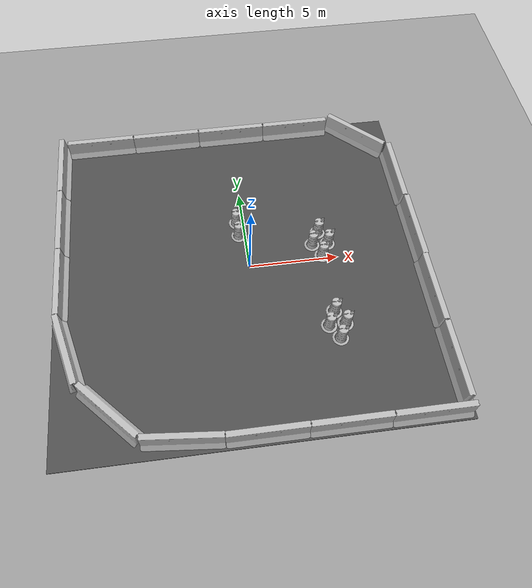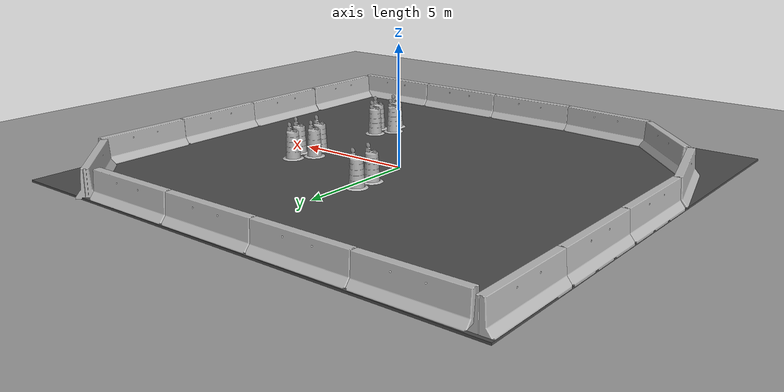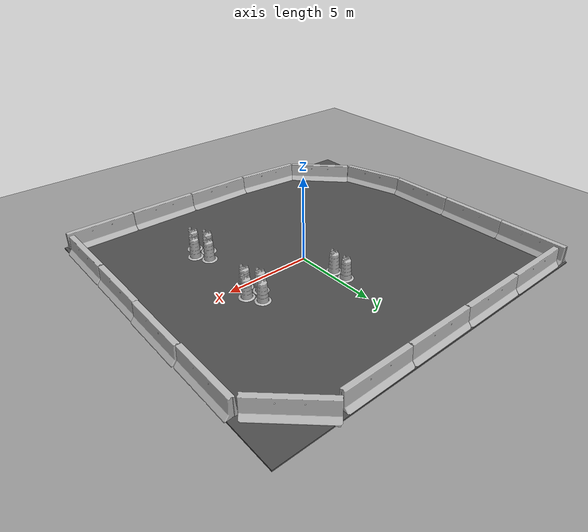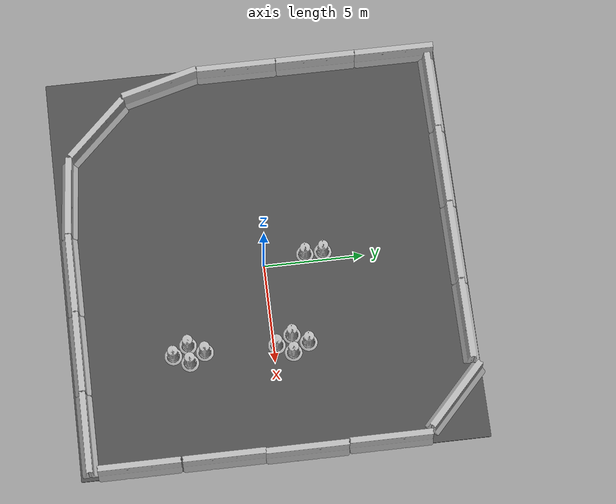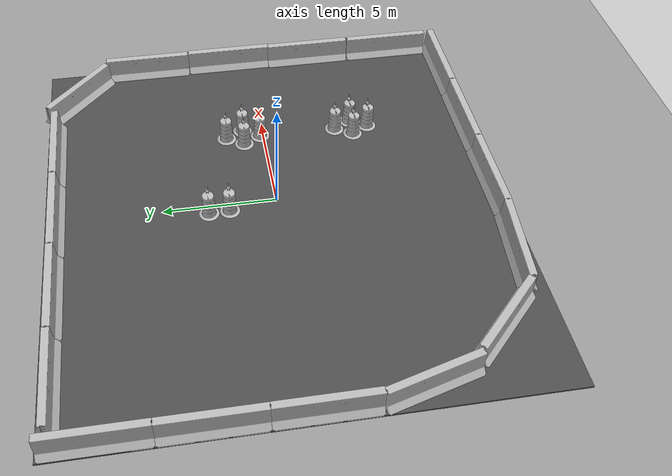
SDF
<sdf version="1.6">
 <world name="default">
  <light name="sun" type="directional">
   <pose>0 0 10 0 -0 0</pose>
   <diffuse>0.8 0.8 0.8 1</diffuse>
   <specular>0.2 0.2 0.2 1</specular>
   <attenuation>
    <range>1000</range>
    <constant>0.9</constant>
    <linear>0.01</linear>
    <quadratic>0.001</quadratic>
   </attenuation>
   <direction>0.5 0.1 -0.9</direction>
  </light>
  <scene><ambient>0.4 0.4 0.4 1</ambient><background>0.7 0.7 0.7 1</background><shadows>1</shadows></scene>
  <physics name="default_physics" default="0" type="ode">
   <max_step_size>0.01</max_step_size>
   <real_time_factor>1</real_time_factor>
   <real_time_update_rate>100</real_time_update_rate>
  </physics>
  <model name="ground_plane_0">
   <static>1</static>
   <link name="link">
    <collision name="collision">
     <geometry><plane><normal>0 0 1</normal><size>100 100</size></plane></geometry>
     <surface><friction><ode><mu>100</mu><mu2>50</mu2></ode></friction></surface>
    </collision>
    <visual name="visual">
     <cast_shadows>0</cast_shadows>
     <geometry><plane><normal>0 0 1</normal><size>100 100</size></plane></geometry>
     <material>
      <script><uri>file://media/materials/scripts/gazebo.material</uri><name>Gazebo/Grey</name></script>
     </material>
    </visual>
    <velocity_decay><linear>0</linear><angular>0</angular></velocity_decay>
   </link>
   <pose>0.497681 0 0 0 -0 0</pose>
  </model>
  <gravity>0 0 -9.8</gravity>
  <magnetic_field>6e-06 2.3e-05 -4.2e-05</magnetic_field>
  <atmosphere type="adiabatic"/>
  <spherical_coordinates>
   <surface_model>EARTH_WGS84</surface_model>
   <latitude_deg>0</latitude_deg>
   <longitude_deg>0</longitude_deg>
   <elevation>0</elevation>
   <heading_deg>0</heading_deg>
  </spherical_coordinates>
  <model name="asphalt_plane">
   <static>1</static>
   <link name="link">
    <collision name="collision"><geometry><box><size>20.8551 20 0.1</size></box></geometry></collision>
    <visual name="visual">
     <cast_shadows>0</cast_shadows>
     <geometry><box><size>20.8551 20 0.1</size></box></geometry>
     <material>
      <script>
       <uri>model://asphalt_plane/materials/scripts</uri>
       <uri>model://asphalt_plane/materials/textures</uri>
       <name>vrc/asphalt</name>
      </script>
     </material>
    </visual>
   </link>
   <pose>-0.497681 0 0 0 -0 0</pose>
  </model>
  <model name="jersey_barrier_0">
   <static>1</static>
   <link name="link">
    <visual name="visual">
     <geometry>
      <mesh><uri>model://jersey_barrier/meshes/jersey_barrier.dae</uri><scale>1 1 1</scale></mesh>
     </geometry>
    </visual>
    <collision name="upright">
     <pose>0 0 0.5715 0 -0 0</pose>
     <geometry><box><size>4.06542 0.3063 1.143</size></box></geometry>
    </collision>
    <collision name="base">
     <pose>0 0 0.032258 0 -0 0</pose>
     <geometry><box><size>4.06542 0.8107 0.064516</size></box></geometry>
    </collision>
    <collision name="base2">
     <pose>0 0 0.1 0 -0 0</pose>
     <geometry><box><size>4.06542 0.65 0.1</size></box></geometry>
    </collision>
    <collision name="base3">
     <pose>0 0 0.2 0 -0 0</pose>
     <geometry><box><size>4.06542 0.5 0.1</size></box></geometry>
    </collision>
    <collision name="left-angle">
     <pose>0 -0.224 0.2401 0.9 -0 0</pose>
     <geometry><box><size>4.06542 0.5 0.064516</size></box></geometry>
    </collision>
    <collision name="right-angle">
     <pose>0 0.224 0.2401 -0.9 0 0</pose>
     <geometry><box><size>4.06542 0.5 0.064516</size></box></geometry>
    </collision>
   </link>
   <pose>3.65574 -9.51151 0 0 -0 0</pose>
  </model>
  <model name="jersey_barrier_0_clone">
   <static>1</static>
   <link name="link">
    <visual name="visual">
     <geometry>
      <mesh><uri>model://jersey_barrier/meshes/jersey_barrier.dae</uri><scale>1 1 1</scale></mesh>
     </geometry>
    </visual>
    <collision name="upright">
     <pose>0 0 0.5715 0 -0 0</pose>
     <geometry><box><size>4.06542 0.3063 1.143</size></box></geometry>
    </collision>
    <collision name="base">
     <pose>0 0 0.032258 0 -0 0</pose>
     <geometry><box><size>4.06542 0.8107 0.064516</size></box></geometry>
    </collision>
    <collision name="base2">
     <pose>0 0 0.1 0 -0 0</pose>
     <geometry><box><size>4.06542 0.65 0.1</size></box></geometry>
    </collision>
    <collision name="base3">
     <pose>0 0 0.2 0 -0 0</pose>
     <geometry><box><size>4.06542 0.5 0.1</size></box></geometry>
    </collision>
    <collision name="left-angle">
     <pose>0 -0.224 0.2401 0.9 -0 0</pose>
     <geometry><box><size>4.06542 0.5 0.064516</size></box></geometry>
    </collision>
    <collision name="right-angle">
     <pose>0 0.224 0.2401 -0.9 0 0</pose>
     <geometry><box><size>4.06542 0.5 0.064516</size></box></geometry>
    </collision>
   </link>
   <pose>-0.409611 -9.50454 0 0 -0 0</pose>
  </model>
  <model name="jersey_barrier_0_clone_clone">
   <static>1</static>
   <link name="link">
    <visual name="visual">
     <geometry>
      <mesh><uri>model://jersey_barrier/meshes/jersey_barrier.dae</uri><scale>1 1 1</scale></mesh>
     </geometry>
    </visual>
    <collision name="upright">
     <pose>0 0 0.5715 0 -0 0</pose>
     <geometry><box><size>4.06542 0.3063 1.143</size></box></geometry>
    </collision>
    <collision name="base">
     <pose>0 0 0.032258 0 -0 0</pose>
     <geometry><box><size>4.06542 0.8107 0.064516</size></box></geometry>
    </collision>
    <collision name="base2">
     <pose>0 0 0.1 0 -0 0</pose>
     <geometry><box><size>4.06542 0.65 0.1</size></box></geometry>
    </collision>
    <collision name="base3">
     <pose>0 0 0.2 0 -0 0</pose>
     <geometry><box><size>4.06542 0.5 0.1</size></box></geometry>
    </collision>
    <collision name="left-angle">
     <pose>0 -0.224 0.2401 0.9 -0 0</pose>
     <geometry><box><size>4.06542 0.5 0.064516</size></box></geometry>
    </collision>
    <collision name="right-angle">
     <pose>0 0.224 0.2401 -0.9 0 0</pose>
     <geometry><box><size>4.06542 0.5 0.064516</size></box></geometry>
    </collision>
   </link>
   <pose>-4.46035 -9.30397 0 0 0 -0.091046</pose>
  </model>
  <model name="jersey_barrier_0_clone_clone_0">
   <static>1</static>
   <link name="link">
    <visual name="visual">
     <geometry>
      <mesh><uri>model://jersey_barrier/meshes/jersey_barrier.dae</uri><scale>1 1 1</scale></mesh>
     </geometry>
    </visual>
    <collision name="upright">
     <pose>0 0 0.5715 0 -0 0</pose>
     <geometry><box><size>4.06542 0.3063 1.143</size></box></geometry>
    </collision>
    <collision name="base">
     <pose>0 0 0.032258 0 -0 0</pose>
     <geometry><box><size>4.06542 0.8107 0.064516</size></box></geometry>
    </collision>
    <collision name="base2">
     <pose>0 0 0.1 0 -0 0</pose>
     <geometry><box><size>4.06542 0.65 0.1</size></box></geometry>
    </collision>
    <collision name="base3">
     <pose>0 0 0.2 0 -0 0</pose>
     <geometry><box><size>4.06542 0.5 0.1</size></box></geometry>
    </collision>
    <collision name="left-angle">
     <pose>0 -0.224 0.2401 0.9 -0 0</pose>
     <geometry><box><size>4.06542 0.5 0.064516</size></box></geometry>
    </collision>
    <collision name="right-angle">
     <pose>0 0.224 0.2401 -0.9 0 0</pose>
     <geometry><box><size>4.06542 0.5 0.064516</size></box></geometry>
    </collision>
   </link>
   <pose>7.73169 -9.51944 0 0 -0 0</pose>
  </model>
  <model name="jersey_barrier_0_clone_clone_0_clone">
   <static>1</static>
   <link name="link">
    <visual name="visual">
     <geometry>
      <mesh><uri>model://jersey_barrier/meshes/jersey_barrier.dae</uri><scale>1 1 1</scale></mesh>
     </geometry>
    </visual>
    <collision name="upright">
     <pose>0 0 0.5715 0 -0 0</pose>
     <geometry><box><size>4.06542 0.3063 1.143</size></box></geometry>
    </collision>
    <collision name="base">
     <pose>0 0 0.032258 0 -0 0</pose>
     <geometry><box><size>4.06542 0.8107 0.064516</size></box></geometry>
    </collision>
    <collision name="base2">
     <pose>0 0 0.1 0 -0 0</pose>
     <geometry><box><size>4.06542 0.65 0.1</size></box></geometry>
    </collision>
    <collision name="base3">
     <pose>0 0 0.2 0 -0 0</pose>
     <geometry><box><size>4.06542 0.5 0.1</size></box></geometry>
    </collision>
    <collision name="left-angle">
     <pose>0 -0.224 0.2401 0.9 -0 0</pose>
     <geometry><box><size>4.06542 0.5 0.064516</size></box></geometry>
    </collision>
    <collision name="right-angle">
     <pose>0 0.224 0.2401 -0.9 0 0</pose>
     <geometry><box><size>4.06542 0.5 0.064516</size></box></geometry>
    </collision>
   </link>
   <pose>9.60369 -7.11606 0 0 -0 1.57</pose>
  </model>
  <model name="jersey_barrier_0_clone_clone_0_clone_0">
   <static>1</static>
   <link name="link">
    <visual name="visual">
     <geometry>
      <mesh><uri>model://jersey_barrier/meshes/jersey_barrier.dae</uri><scale>1 1 1</scale></mesh>
     </geometry>
    </visual>
    <collision name="upright">
     <pose>0 0 0.5715 0 -0 0</pose>
     <geometry><box><size>4.06542 0.3063 1.143</size></box></geometry>
    </collision>
    <collision name="base">
     <pose>0 0 0.032258 0 -0 0</pose>
     <geometry><box><size>4.06542 0.8107 0.064516</size></box></geometry>
    </collision>
    <collision name="base2">
     <pose>0 0 0.1 0 -0 0</pose>
     <geometry><box><size>4.06542 0.65 0.1</size></box></geometry>
    </collision>
    <collision name="base3">
     <pose>0 0 0.2 0 -0 0</pose>
     <geometry><box><size>4.06542 0.5 0.1</size></box></geometry>
    </collision>
    <collision name="left-angle">
     <pose>0 -0.224 0.2401 0.9 -0 0</pose>
     <geometry><box><size>4.06542 0.5 0.064516</size></box></geometry>
    </collision>
    <collision name="right-angle">
     <pose>0 0.224 0.2401 -0.9 0 0</pose>
     <geometry><box><size>4.06542 0.5 0.064516</size></box></geometry>
    </collision>
   </link>
   <pose>-7.93195 -7.59799 0 0 0 -0.79798</pose>
  </model>
  <model name="jersey_barrier_0_clone_clone_0_clone_clone">
   <static>1</static>
   <link name="link">
    <visual name="visual">
     <geometry>
      <mesh><uri>model://jersey_barrier/meshes/jersey_barrier.dae</uri><scale>1 1 1</scale></mesh>
     </geometry>
    </visual>
    <collision name="upright">
     <pose>0 0 0.5715 0 -0 0</pose>
     <geometry><box><size>4.06542 0.3063 1.143</size></box></geometry>
    </collision>
    <collision name="base">
     <pose>0 0 0.032258 0 -0 0</pose>
     <geometry><box><size>4.06542 0.8107 0.064516</size></box></geometry>
    </collision>
    <collision name="base2">
     <pose>0 0 0.1 0 -0 0</pose>
     <geometry><box><size>4.06542 0.65 0.1</size></box></geometry>
    </collision>
    <collision name="base3">
     <pose>0 0 0.2 0 -0 0</pose>
     <geometry><box><size>4.06542 0.5 0.1</size></box></geometry>
    </collision>
    <collision name="left-angle">
     <pose>0 -0.224 0.2401 0.9 -0 0</pose>
     <geometry><box><size>4.06542 0.5 0.064516</size></box></geometry>
    </collision>
    <collision name="right-angle">
     <pose>0 0.224 0.2401 -0.9 0 0</pose>
     <geometry><box><size>4.06542 0.5 0.064516</size></box></geometry>
    </collision>
   </link>
   <pose>9.60924 -3.00371 0 0 -0 1.57</pose>
  </model>
  <model name="jersey_barrier_0_clone_clone_0_clone_clone_0">
   <static>1</static>
   <link name="link">
    <visual name="visual">
     <geometry>
      <mesh><uri>model://jersey_barrier/meshes/jersey_barrier.dae</uri><scale>1 1 1</scale></mesh>
     </geometry>
    </visual>
    <collision name="upright">
     <pose>0 0 0.5715 0 -0 0</pose>
     <geometry><box><size>4.06542 0.3063 1.143</size></box></geometry>
    </collision>
    <collision name="base">
     <pose>0 0 0.032258 0 -0 0</pose>
     <geometry><box><size>4.06542 0.8107 0.064516</size></box></geometry>
    </collision>
    <collision name="base2">
     <pose>0 0 0.1 0 -0 0</pose>
     <geometry><box><size>4.06542 0.65 0.1</size></box></geometry>
    </collision>
    <collision name="base3">
     <pose>0 0 0.2 0 -0 0</pose>
     <geometry><box><size>4.06542 0.5 0.1</size></box></geometry>
    </collision>
    <collision name="left-angle">
     <pose>0 -0.224 0.2401 0.9 -0 0</pose>
     <geometry><box><size>4.06542 0.5 0.064516</size></box></geometry>
    </collision>
    <collision name="right-angle">
     <pose>0 0.224 0.2401 -0.9 0 0</pose>
     <geometry><box><size>4.06542 0.5 0.064516</size></box></geometry>
    </collision>
   </link>
   <pose>9.65912 1.02011 0 0 -0 1.57</pose>
  </model>
  <model name="jersey_barrier_0_clone_clone_0_clone_clone_1">
   <static>1</static>
   <link name="link">
    <visual name="visual">
     <geometry>
      <mesh><uri>model://jersey_barrier/meshes/jersey_barrier.dae</uri><scale>1 1 1</scale></mesh>
     </geometry>
    </visual>
    <collision name="upright">
     <pose>0 0 0.5715 0 -0 0</pose>
     <geometry><box><size>4.06542 0.3063 1.143</size></box></geometry>
    </collision>
    <collision name="base">
     <pose>0 0 0.032258 0 -0 0</pose>
     <geometry><box><size>4.06542 0.8107 0.064516</size></box></geometry>
    </collision>
    <collision name="base2">
     <pose>0 0 0.1 0 -0 0</pose>
     <geometry><box><size>4.06542 0.65 0.1</size></box></geometry>
    </collision>
    <collision name="base3">
     <pose>0 0 0.2 0 -0 0</pose>
     <geometry><box><size>4.06542 0.5 0.1</size></box></geometry>
    </collision>
    <collision name="left-angle">
     <pose>0 -0.224 0.2401 0.9 -0 0</pose>
     <geometry><box><size>4.06542 0.5 0.064516</size></box></geometry>
    </collision>
    <collision name="right-angle">
     <pose>0 0.224 0.2401 -0.9 0 0</pose>
     <geometry><box><size>4.06542 0.5 0.064516</size></box></geometry>
    </collision>
   </link>
   <pose>9.60899 5.10853 0 0 -0 1.57</pose>
  </model>
  <model name="jersey_barrier_0_clone_clone_0_clone_clone_1_clone">
   <static>1</static>
   <link name="link">
    <visual name="visual">
     <geometry>
      <mesh><uri>model://jersey_barrier/meshes/jersey_barrier.dae</uri><scale>1 1 1</scale></mesh>
     </geometry>
    </visual>
    <collision name="upright">
     <pose>0 0 0.5715 0 -0 0</pose>
     <geometry><box><size>4.06542 0.3063 1.143</size></box></geometry>
    </collision>
    <collision name="base">
     <pose>0 0 0.032258 0 -0 0</pose>
     <geometry><box><size>4.06542 0.8107 0.064516</size></box></geometry>
    </collision>
    <collision name="base2">
     <pose>0 0 0.1 0 -0 0</pose>
     <geometry><box><size>4.06542 0.65 0.1</size></box></geometry>
    </collision>
    <collision name="base3">
     <pose>0 0 0.2 0 -0 0</pose>
     <geometry><box><size>4.06542 0.5 0.1</size></box></geometry>
    </collision>
    <collision name="left-angle">
     <pose>0 -0.224 0.2401 0.9 -0 0</pose>
     <geometry><box><size>4.06542 0.5 0.064516</size></box></geometry>
    </collision>
    <collision name="right-angle">
     <pose>0 0.224 0.2401 -0.9 0 0</pose>
     <geometry><box><size>4.06542 0.5 0.064516</size></box></geometry>
    </collision>
   </link>
   <pose>7.86804 8.5176 0 0 -0 2.38708</pose>
  </model>
  <model name="jersey_barrier_0_clone_clone_0_clone_clone_1_clone_clone">
   <static>1</static>
   <link name="link">
    <visual name="visual">
     <geometry>
      <mesh><uri>model://jersey_barrier/meshes/jersey_barrier.dae</uri><scale>1 1 1</scale></mesh>
     </geometry>
    </visual>
    <collision name="upright">
     <pose>0 0 0.5715 0 -0 0</pose>
     <geometry><box><size>4.06542 0.3063 1.143</size></box></geometry>
    </collision>
    <collision name="base">
     <pose>0 0 0.032258 0 -0 0</pose>
     <geometry><box><size>4.06542 0.8107 0.064516</size></box></geometry>
    </collision>
    <collision name="base2">
     <pose>0 0 0.1 0 -0 0</pose>
     <geometry><box><size>4.06542 0.65 0.1</size></box></geometry>
    </collision>
    <collision name="base3">
     <pose>0 0 0.2 0 -0 0</pose>
     <geometry><box><size>4.06542 0.5 0.1</size></box></geometry>
    </collision>
    <collision name="left-angle">
     <pose>0 -0.224 0.2401 0.9 -0 0</pose>
     <geometry><box><size>4.06542 0.5 0.064516</size></box></geometry>
    </collision>
    <collision name="right-angle">
     <pose>0 0.224 0.2401 -0.9 0 0</pose>
     <geometry><box><size>4.06542 0.5 0.064516</size></box></geometry>
    </collision>
   </link>
   <pose>4.11933 9.5754 0 0 0 -3.13684</pose>
  </model>
  <model name="jersey_barrier_0_clone_clone_0_clone_clone_1_clone_clone_clone">
   <static>1</static>
   <link name="link">
    <visual name="visual">
     <geometry>
      <mesh><uri>model://jersey_barrier/meshes/jersey_barrier.dae</uri><scale>1 1 1</scale></mesh>
     </geometry>
    </visual>
    <collision name="upright">
     <pose>0 0 0.5715 0 -0 0</pose>
     <geometry><box><size>4.06542 0.3063 1.143</size></box></geometry>
    </collision>
    <collision name="base">
     <pose>0 0 0.032258 0 -0 0</pose>
     <geometry><box><size>4.06542 0.8107 0.064516</size></box></geometry>
    </collision>
    <collision name="base2">
     <pose>0 0 0.1 0 -0 0</pose>
     <geometry><box><size>4.06542 0.65 0.1</size></box></geometry>
    </collision>
    <collision name="base3">
     <pose>0 0 0.2 0 -0 0</pose>
     <geometry><box><size>4.06542 0.5 0.1</size></box></geometry>
    </collision>
    <collision name="left-angle">
     <pose>0 -0.224 0.2401 0.9 -0 0</pose>
     <geometry><box><size>4.06542 0.5 0.064516</size></box></geometry>
    </collision>
    <collision name="right-angle">
     <pose>0 0.224 0.2401 -0.9 0 0</pose>
     <geometry><box><size>4.06542 0.5 0.064516</size></box></geometry>
    </collision>
   </link>
   <pose>0.037098 9.56065 0 0 0 -3.13684</pose>
  </model>
  <model name="jersey_barrier_0_clone_clone_0_clone_clone_1_clone_clone_clone_clone">
   <static>1</static>
   <link name="link">
    <visual name="visual">
     <geometry>
      <mesh><uri>model://jersey_barrier/meshes/jersey_barrier.dae</uri><scale>1 1 1</scale></mesh>
     </geometry>
    </visual>
    <collision name="upright">
     <pose>0 0 0.5715 0 -0 0</pose>
     <geometry><box><size>4.06542 0.3063 1.143</size></box></geometry>
    </collision>
    <collision name="base">
     <pose>0 0 0.032258 0 -0 0</pose>
     <geometry><box><size>4.06542 0.8107 0.064516</size></box></geometry>
    </collision>
    <collision name="base2">
     <pose>0 0 0.1 0 -0 0</pose>
     <geometry><box><size>4.06542 0.65 0.1</size></box></geometry>
    </collision>
    <collision name="base3">
     <pose>0 0 0.2 0 -0 0</pose>
     <geometry><box><size>4.06542 0.5 0.1</size></box></geometry>
    </collision>
    <collision name="left-angle">
     <pose>0 -0.224 0.2401 0.9 -0 0</pose>
     <geometry><box><size>4.06542 0.5 0.064516</size></box></geometry>
    </collision>
    <collision name="right-angle">
     <pose>0 0.224 0.2401 -0.9 0 0</pose>
     <geometry><box><size>4.06542 0.5 0.064516</size></box></geometry>
    </collision>
   </link>
   <pose>-4.0382 9.55774 0 0 0 -3.13684</pose>
  </model>
  <model name="jersey_barrier_0_clone_clone_0_clone_clone_1_clone_clone_clone_clone_clone">
   <static>1</static>
   <link name="link">
    <visual name="visual">
     <geometry>
      <mesh><uri>model://jersey_barrier/meshes/jersey_barrier.dae</uri><scale>1 1 1</scale></mesh>
     </geometry>
    </visual>
    <collision name="upright">
     <pose>0 0 0.5715 0 -0 0</pose>
     <geometry><box><size>4.06542 0.3063 1.143</size></box></geometry>
    </collision>
    <collision name="base">
     <pose>0 0 0.032258 0 -0 0</pose>
     <geometry><box><size>4.06542 0.8107 0.064516</size></box></geometry>
    </collision>
    <collision name="base2">
     <pose>0 0 0.1 0 -0 0</pose>
     <geometry><box><size>4.06542 0.65 0.1</size></box></geometry>
    </collision>
    <collision name="base3">
     <pose>0 0 0.2 0 -0 0</pose>
     <geometry><box><size>4.06542 0.5 0.1</size></box></geometry>
    </collision>
    <collision name="left-angle">
     <pose>0 -0.224 0.2401 0.9 -0 0</pose>
     <geometry><box><size>4.06542 0.5 0.064516</size></box></geometry>
    </collision>
    <collision name="right-angle">
     <pose>0 0.224 0.2401 -0.9 0 0</pose>
     <geometry><box><size>4.06542 0.5 0.064516</size></box></geometry>
    </collision>
   </link>
   <pose>-8.11168 9.55539 0 0 0 -3.13684</pose>
  </model>
  <model name="jersey_barrier_0_clone_clone_0_clone_clone_1_clone_0">
   <static>1</static>
   <link name="link">
    <visual name="visual">
     <geometry>
      <mesh><uri>model://jersey_barrier/meshes/jersey_barrier.dae</uri><scale>1 1 1</scale></mesh>
     </geometry>
    </visual>
    <collision name="upright">
     <pose>0 0 0.5715 0 -0 0</pose>
     <geometry><box><size>4.06542 0.3063 1.143</size></box></geometry>
    </collision>
    <collision name="base">
     <pose>0 0 0.032258 0 -0 0</pose>
     <geometry><box><size>4.06542 0.8107 0.064516</size></box></geometry>
    </collision>
    <collision name="base2">
     <pose>0 0 0.1 0 -0 0</pose>
     <geometry><box><size>4.06542 0.65 0.1</size></box></geometry>
    </collision>
    <collision name="base3">
     <pose>0 0 0.2 0 -0 0</pose>
     <geometry><box><size>4.06542 0.5 0.1</size></box></geometry>
    </collision>
    <collision name="left-angle">
     <pose>0 -0.224 0.2401 0.9 -0 0</pose>
     <geometry><box><size>4.06542 0.5 0.064516</size></box></geometry>
    </collision>
    <collision name="right-angle">
     <pose>0 0.224 0.2401 -0.9 0 0</pose>
     <geometry><box><size>4.06542 0.5 0.064516</size></box></geometry>
    </collision>
   </link>
   <pose>-10.5179 7.89058 0 0 -0 1.57</pose>
  </model>
  <model name="jersey_barrier_0_clone_clone_0_clone_clone_1_clone_0_clone">
   <static>1</static>
   <link name="link">
    <visual name="visual">
     <geometry>
      <mesh><uri>model://jersey_barrier/meshes/jersey_barrier.dae</uri><scale>1 1 1</scale></mesh>
     </geometry>
    </visual>
    <collision name="upright">
     <pose>0 0 0.5715 0 -0 0</pose>
     <geometry><box><size>4.06542 0.3063 1.143</size></box></geometry>
    </collision>
    <collision name="base">
     <pose>0 0 0.032258 0 -0 0</pose>
     <geometry><box><size>4.06542 0.8107 0.064516</size></box></geometry>
    </collision>
    <collision name="base2">
     <pose>0 0 0.1 0 -0 0</pose>
     <geometry><box><size>4.06542 0.65 0.1</size></box></geometry>
    </collision>
    <collision name="base3">
     <pose>0 0 0.2 0 -0 0</pose>
     <geometry><box><size>4.06542 0.5 0.1</size></box></geometry>
    </collision>
    <collision name="left-angle">
     <pose>0 -0.224 0.2401 0.9 -0 0</pose>
     <geometry><box><size>4.06542 0.5 0.064516</size></box></geometry>
    </collision>
    <collision name="right-angle">
     <pose>0 0.224 0.2401 -0.9 0 0</pose>
     <geometry><box><size>4.06542 0.5 0.064516</size></box></geometry>
    </collision>
   </link>
   <pose>-10.5252 3.84195 0 0 -0 1.57</pose>
  </model>
  <model name="jersey_barrier_0_clone_clone_0_clone_clone_1_clone_0_clone_clone">
   <static>1</static>
   <link name="link">
    <visual name="visual">
     <geometry>
      <mesh><uri>model://jersey_barrier/meshes/jersey_barrier.dae</uri><scale>1 1 1</scale></mesh>
     </geometry>
    </visual>
    <collision name="upright">
     <pose>0 0 0.5715 0 -0 0</pose>
     <geometry><box><size>4.06542 0.3063 1.143</size></box></geometry>
    </collision>
    <collision name="base">
     <pose>0 0 0.032258 0 -0 0</pose>
     <geometry><box><size>4.06542 0.8107 0.064516</size></box></geometry>
    </collision>
    <collision name="base2">
     <pose>0 0 0.1 0 -0 0</pose>
     <geometry><box><size>4.06542 0.65 0.1</size></box></geometry>
    </collision>
    <collision name="base3">
     <pose>0 0 0.2 0 -0 0</pose>
     <geometry><box><size>4.06542 0.5 0.1</size></box></geometry>
    </collision>
    <collision name="left-angle">
     <pose>0 -0.224 0.2401 0.9 -0 0</pose>
     <geometry><box><size>4.06542 0.5 0.064516</size></box></geometry>
    </collision>
    <collision name="right-angle">
     <pose>0 0.224 0.2401 -0.9 0 0</pose>
     <geometry><box><size>4.06542 0.5 0.064516</size></box></geometry>
    </collision>
   </link>
   <pose>-10.5222 -0.212968 0 0 -0 1.57</pose>
  </model>
  <model name="jersey_barrier_0_clone_clone_0_clone_clone_1_clone_0_clone_clone_clone">
   <static>1</static>
   <link name="link">
    <visual name="visual">
     <geometry>
      <mesh><uri>model://jersey_barrier/meshes/jersey_barrier.dae</uri><scale>1 1 1</scale></mesh>
     </geometry>
    </visual>
    <collision name="upright">
     <pose>0 0 0.5715 0 -0 0</pose>
     <geometry><box><size>4.06542 0.3063 1.143</size></box></geometry>
    </collision>
    <collision name="base">
     <pose>0 0 0.032258 0 -0 0</pose>
     <geometry><box><size>4.06542 0.8107 0.064516</size></box></geometry>
    </collision>
    <collision name="base2">
     <pose>0 0 0.1 0 -0 0</pose>
     <geometry><box><size>4.06542 0.65 0.1</size></box></geometry>
    </collision>
    <collision name="base3">
     <pose>0 0 0.2 0 -0 0</pose>
     <geometry><box><size>4.06542 0.5 0.1</size></box></geometry>
    </collision>
    <collision name="left-angle">
     <pose>0 -0.224 0.2401 0.9 -0 0</pose>
     <geometry><box><size>4.06542 0.5 0.064516</size></box></geometry>
    </collision>
    <collision name="right-angle">
     <pose>0 0.224 0.2401 -0.9 0 0</pose>
     <geometry><box><size>4.06542 0.5 0.064516</size></box></geometry>
    </collision>
   </link>
   <pose>-10.0358 -4.20105 0 0 -0 1.83726</pose>
  </model>
  <model name="Construction Barrel">
   <static>1</static>
   <link name="link">
    <inertial>
     <pose>0 0 0.4 0 -0 0</pose>
     <mass>500</mass>
     <inertia><ixx>51.2096</ixx><iyy>51.2096</iyy><izz>25</izz><ixy>0</ixy><ixz>0</ixz><iyz>0</iyz></inertia>
    </inertial>
    <collision name="collision">
     <geometry>
      <mesh><uri>model://construction_barrel/meshes/construction_barrel.dae</uri><scale>1 1 1</scale></mesh>
     </geometry>
    </collision>
    <visual name="visual">
     <geometry>
      <mesh><uri>model://construction_barrel/meshes/construction_barrel.dae</uri><scale>1 1 1</scale></mesh>
     </geometry>
    </visual>
   </link>
   <pose>-0.368908 2.10626 0 0 -0 0</pose>
  </model>
  <model name="Construction Barrel_clone">
   <static>1</static>
   <link name="link">
    <inertial>
     <pose>0 0 0.4 0 -0 0</pose>
     <mass>500</mass>
     <inertia><ixx>51.2096</ixx><iyy>51.2096</iyy><izz>25</izz><ixy>0</ixy><ixz>0</ixz><iyz>0</iyz></inertia>
    </inertial>
    <collision name="collision">
     <geometry>
      <mesh><uri>model://construction_barrel/meshes/construction_barrel.dae</uri><scale>1 1 1</scale></mesh>
     </geometry>
    </collision>
    <visual name="visual">
     <geometry>
      <mesh><uri>model://construction_barrel/meshes/construction_barrel.dae</uri><scale>1 1 1</scale></mesh>
     </geometry>
    </visual>
   </link>
   <pose>4.17631 0.170598 0 0 -0 0</pose>
  </model>
  <model name="Construction Barrel_clone_clone">
   <static>1</static>
   <link name="link">
    <inertial>
     <pose>0 0 0.4 0 -0 0</pose>
     <mass>500</mass>
     <inertia><ixx>51.2096</ixx><iyy>51.2096</iyy><izz>25</izz><ixy>0</ixy><ixz>0</ixz><iyz>0</iyz></inertia>
    </inertial>
    <collision name="collision">
     <geometry>
      <mesh><uri>model://construction_barrel/meshes/construction_barrel.dae</uri><scale>1 1 1</scale></mesh>
     </geometry>
    </collision>
    <visual name="visual">
     <geometry>
      <mesh><uri>model://construction_barrel/meshes/construction_barrel.dae</uri><scale>1 1 1</scale></mesh>
     </geometry>
    </visual>
   </link>
   <pose>4.19352 1.74921 0 0 -0 0</pose>
  </model>
  <model name="Construction Barrel_clone_clone_0">
   <static>1</static>
   <link name="link">
    <inertial>
     <pose>0 0 0.4 0 -0 0</pose>
     <mass>500</mass>
     <inertia><ixx>51.2096</ixx><iyy>51.2096</iyy><izz>25</izz><ixy>0</ixy><ixz>0</ixz><iyz>0</iyz></inertia>
    </inertial>
    <collision name="collision">
     <geometry>
      <mesh><uri>model://construction_barrel/meshes/construction_barrel.dae</uri><scale>1 1 1</scale></mesh>
     </geometry>
    </collision>
    <visual name="visual">
     <geometry>
      <mesh><uri>model://construction_barrel/meshes/construction_barrel.dae</uri><scale>1 1 1</scale></mesh>
     </geometry>
    </visual>
   </link>
   <pose>-0.404421 3.01172 0 0 -0 0</pose>
  </model>
  <model name="Construction Barrel_clone_clone_0_clone">
   <static>1</static>
   <link name="link">
    <inertial>
     <pose>0 0 0.4 0 -0 0</pose>
     <mass>500</mass>
     <inertia><ixx>51.2096</ixx><iyy>51.2096</iyy><izz>25</izz><ixy>0</ixy><ixz>0</ixz><iyz>0</iyz></inertia>
    </inertial>
    <collision name="collision">
     <geometry>
      <mesh><uri>model://construction_barrel/meshes/construction_barrel.dae</uri><scale>1 1 1</scale></mesh>
     </geometry>
    </collision>
    <visual name="visual">
     <geometry>
      <mesh><uri>model://construction_barrel/meshes/construction_barrel.dae</uri><scale>1 1 1</scale></mesh>
     </geometry>
    </visual>
   </link>
   <pose>4.62824 0.944855 0 0 -0 0</pose>
  </model>
  <model name="Construction Barrel_clone_clone_0_clone_clone">
   <static>1</static>
   <link name="link">
    <inertial>
     <pose>0 0 0.4 0 -0 0</pose>
     <mass>500</mass>
     <inertia><ixx>51.2096</ixx><iyy>51.2096</iyy><izz>25</izz><ixy>0</ixy><ixz>0</ixz><iyz>0</iyz></inertia>
    </inertial>
    <collision name="collision">
     <geometry>
      <mesh><uri>model://construction_barrel/meshes/construction_barrel.dae</uri><scale>1 1 1</scale></mesh>
     </geometry>
    </collision>
    <visual name="visual">
     <geometry>
      <mesh><uri>model://construction_barrel/meshes/construction_barrel.dae</uri><scale>1 1 1</scale></mesh>
     </geometry>
    </visual>
   </link>
   <pose>3.73481 0.966829 0 0 -0 0</pose>
  </model>
  <model name="Construction Barrel_clone_clone_0_clone_clone_0">
   <static>1</static>
   <link name="link">
    <inertial>
     <pose>0 0 0.4 0 -0 0</pose>
     <mass>500</mass>
     <inertia><ixx>51.2096</ixx><iyy>51.2096</iyy><izz>25</izz><ixy>0</ixy><ixz>0</ixz><iyz>0</iyz></inertia>
    </inertial>
    <collision name="collision">
     <geometry>
      <mesh><uri>model://construction_barrel/meshes/construction_barrel.dae</uri><scale>1 1 1</scale></mesh>
     </geometry>
    </collision>
    <visual name="visual">
     <geometry>
      <mesh><uri>model://construction_barrel/meshes/construction_barrel.dae</uri><scale>1 1 1</scale></mesh>
     </geometry>
    </visual>
   </link>
   <pose>4.12992 -3.38697 0 0 -0 0</pose>
  </model>
  <model name="Construction Barrel_clone_clone_0_clone_clone_0_clone">
   <static>1</static>
   <link name="link">
    <inertial>
     <pose>0 0 0.4 0 -0 0</pose>
     <mass>500</mass>
     <inertia><ixx>51.2096</ixx><iyy>51.2096</iyy><izz>25</izz><ixy>0</ixy><ixz>0</ixz><iyz>0</iyz></inertia>
    </inertial>
    <collision name="collision">
     <geometry>
      <mesh><uri>model://construction_barrel/meshes/construction_barrel.dae</uri><scale>1 1 1</scale></mesh>
     </geometry>
    </collision>
    <visual name="visual">
     <geometry>
      <mesh><uri>model://construction_barrel/meshes/construction_barrel.dae</uri><scale>1 1 1</scale></mesh>
     </geometry>
    </visual>
   </link>
   <pose>4.16176 -4.95179 0 0 -0 0</pose>
  </model>
  <model name="Construction Barrel_clone_clone_0_clone_clone_0_clone_clone">
   <static>1</static>
   <link name="link">
    <inertial>
     <pose>0 0 0.4 0 -0 0</pose>
     <mass>500</mass>
     <inertia><ixx>51.2096</ixx><iyy>51.2096</iyy><izz>25</izz><ixy>0</ixy><ixz>0</ixz><iyz>0</iyz></inertia>
    </inertial>
    <collision name="collision">
     <geometry>
      <mesh><uri>model://construction_barrel/meshes/construction_barrel.dae</uri><scale>1 1 1</scale></mesh>
     </geometry>
    </collision>
    <visual name="visual">
     <geometry>
      <mesh><uri>model://construction_barrel/meshes/construction_barrel.dae</uri><scale>1 1 1</scale></mesh>
     </geometry>
    </visual>
   </link>
   <pose>4.58656 -4.16271 0 0 -0 0</pose>
  </model>
  <model name="Construction Barrel_clone_clone_0_clone_clone_0_clone_clone_clone">
   <static>1</static>
   <link name="link">
    <inertial>
     <pose>0 0 0.4 0 -0 0</pose>
     <mass>500</mass>
     <inertia><ixx>51.2096</ixx><iyy>51.2096</iyy><izz>25</izz><ixy>0</ixy><ixz>0</ixz><iyz>0</iyz></inertia>
    </inertial>
    <collision name="collision">
     <geometry>
      <mesh><uri>model://construction_barrel/meshes/construction_barrel.dae</uri><scale>1 1 1</scale></mesh>
     </geometry>
    </collision>
    <visual name="visual">
     <geometry>
      <mesh><uri>model://construction_barrel/meshes/construction_barrel.dae</uri><scale>1 1 1</scale></mesh>
     </geometry>
    </visual>
   </link>
   <pose>3.69758 -4.18256 0 0 -0 0</pose>
  </model>
 </world>
</sdf>
